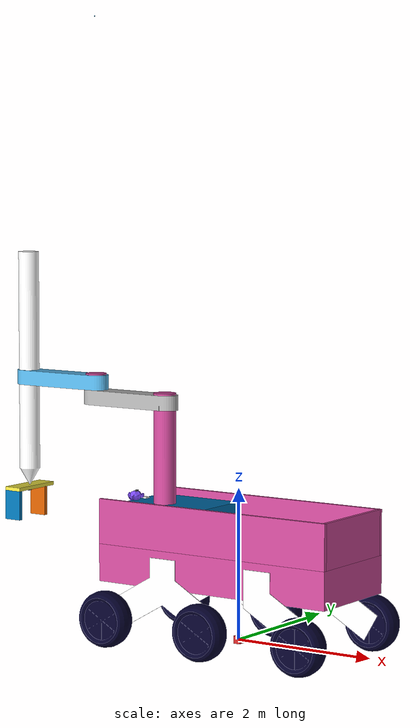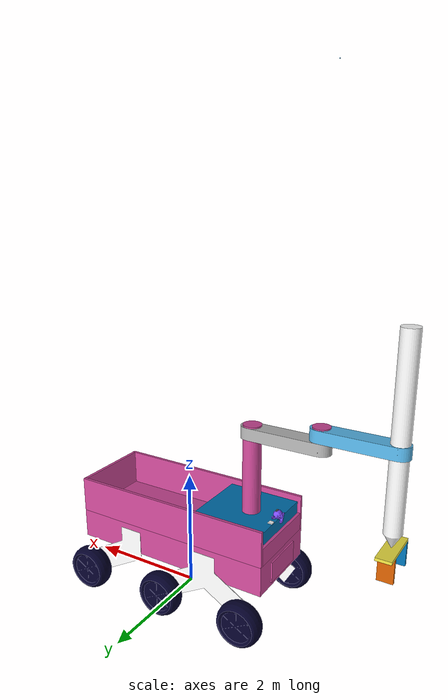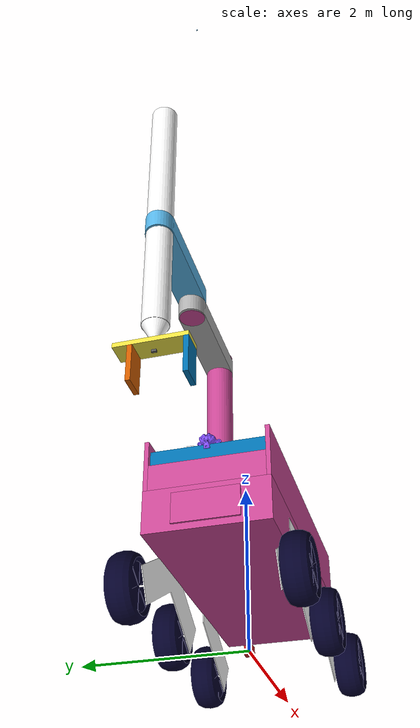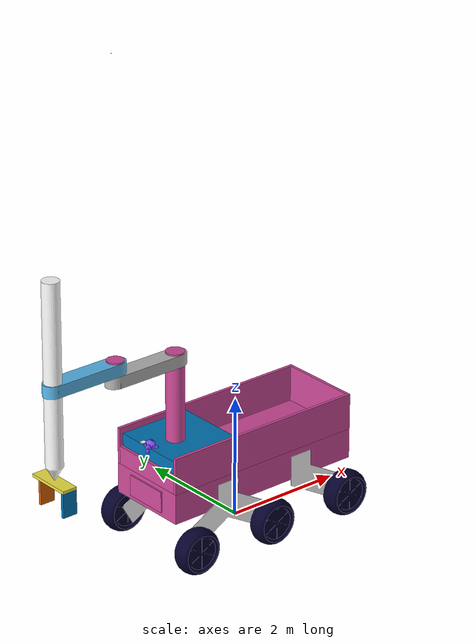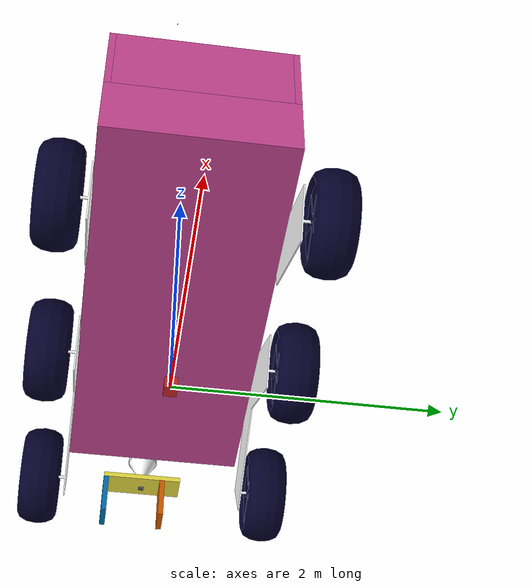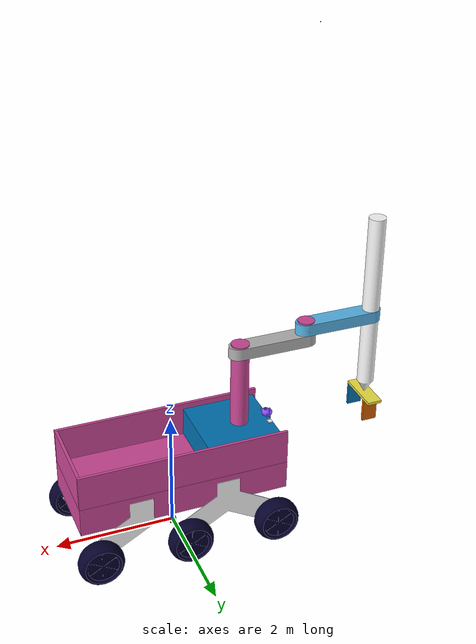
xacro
<?xml version="1.0"?>

<robot name="rover" xmlns:xacro="http://wiki.ros.org/xacro">

    <!-- includes -->
    <xacro:include filename="$(find rover_description)/urdf/base/robot_base.urdf.xacro"/>
    <xacro:include filename="$(find rover_description)/urdf/wheels/wheels.urdf.xacro"/>
    <xacro:include filename="$(find rover_description)/urdf/arm/scara.urdf.xacro"/>
    <xacro:include filename="$(find rover_description)/urdf/arm/gripper.urdf.xacro"/>
    <xacro:include filename="$(find rover_description)/urdf/ros2_control.urdf.xacro"/>
    <xacro:include filename="$(find rover_description)/urdf/utils/utils.urdf.xacro"/>
    <xacro:include filename="$(find rover_description)/urdf/sensors/camera.urdf.xacro"/>
    <xacro:include filename="$(find rover_description)/urdf/sensors/imu_sensor.urdf.xacro"/>
    <xacro:include filename="$(find rover_description)/urdf/sensors/gps.urdf.xacro"/>

    <!-- properties -->
    <xacro:property name="PI" value="3.1415926535897931"/>

    <!-- arguments -->
    <xacro:arg name="robot_ns" default=""/>
    <xacro:arg name="prefix" default=""/>

    <!-- robot parts -->
    <xacro:utils/>

    <!-- base -->
    <xacro:robot_base/>

    <!-- wheels -->
    <xacro:wheels parent="base_link"/>

    <!-- arm -->
    <xacro:scara parent="base_link"/>
    <xacro:gripper parent="prismatic_scara_link"/>

    <!-- sensors -->
    <xacro:camera node_name="front_camera" node_namespace="$(arg robot_ns)" frame_prefix="$(arg prefix)front_camera" parent="$(arg prefix)base_link" >
        <origin xyz="-1.65 0.0 0.82" rpy="0.0 0.0 ${PI}"/>
    </xacro:camera>

    <xacro:camera node_name="arm_camera" node_namespace="$(arg robot_ns)" frame_prefix="$(arg prefix)arm_camera" parent="$(arg prefix)base_gripper_link" >
        <origin xyz="0.0 0.0 -0.05" rpy="0.0 ${PI/2} ${PI}"/>
    </xacro:camera>

    <xacro:imu_sensor ns="$(arg robot_ns)" prefix="$(arg prefix)imu" parent="$(arg prefix)stand_scara2_link">
        <origin xyz="0.0 0.0 5.0" rpy="0 0 0"/>
    </xacro:imu_sensor>

    <xacro:gps node_namespace="$(arg robot_ns)" frame_prefix="$(arg prefix)gps" parent="$(arg prefix)base_link" simulation="true">
        <origin xyz="-1.65 0.2 0.70" rpy="0 0 0"/>
    </xacro:gps>

    <!-- gazebo ROS control plugins -->
    <xacro:include filename="$(find rover_description)/urdf/ros2_control.urdf.xacro"/>
    <xacro:arg name="config_controllers" default="$(find rover_description)/config/rover_controllers.yaml"/>
    <xacro:arg name="update_rate" default="30"/>
    <xacro:ros2_control/>

</robot>

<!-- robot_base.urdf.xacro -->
<robot name="rover" xmlns:xacro="http://wiki.ros.org/xacro">

    <xacro:macro name="robot_base">

        <joint name="base_link_joint" type="fixed">
            <origin rpy="0.00000 0.00000 0.00000" xyz="0.00000 0.00000 1.00000"/>
            <parent link="base_footprint"/>
            <child link="base_link"/>
        </joint>

        <link name="base_footprint">
        <collision name="base_footprint_collision">
            <origin rpy="0.00000 0.00000 0.00000" xyz="0.00000 0.00000 0.00000"/>
            <geometry>
            <box size="0.10000 0.10000 0.10000"/>
            </geometry>
        </collision>
        <visual name="base_footprint">
            <origin rpy="0.00000 0.00000 0.00000" xyz="0.00000 0.00000 0.00000"/>
            <material name="red.001"/>
            <geometry>
            <box size="0.10000 0.10000 0.10000"/>
            </geometry>
        </visual>
        </link>

        <link name="base_link">
            <collision name="base_rover.001_collision">
            <origin rpy="0.00000 0.00000 0.00000" xyz="0.00000 0.00000 0.00000"/>
            <geometry>
                <mesh filename="file://$(find rover_description)/meshes/dae/Cube.005.dae" scale="1.75000 0.70000 0.25000"/>
            </geometry>
            </collision>
            <collision name="base_rover.002_collision">
            <origin rpy="0.00000 0.00000 0.00000" xyz="0.00000 0.00000 0.00000"/>
            <geometry>
                <mesh filename="file://$(find rover_description)/meshes/dae/Cube.006.dae" scale="1.75000 0.70000 0.25000"/>
            </geometry>
            </collision>
            <collision name="base_rover.003_collision">
            <origin rpy="0.00000 0.00000 0.00000" xyz="0.00000 0.00000 0.00000"/>
            <geometry>
                <mesh filename="file://$(find rover_description)/meshes/dae/Cube.007.dae" scale="1.75000 0.70000 0.25000"/>
            </geometry>
            </collision>
            <collision name="base_rover.004_collision">
            <origin rpy="0.00000 0.00000 0.00000" xyz="0.00000 0.00000 0.00000"/>
            <geometry>
                <mesh filename="file://$(find rover_description)/meshes/dae/Cube.008.dae" scale="1.75000 0.70000 0.25000"/>
            </geometry>
            </collision>
            <collision name="base_rover.005_collision">
            <origin rpy="0.00000 0.00000 0.00000" xyz="0.00000 0.00000 0.00000"/>
            <geometry>
                <mesh filename="file://$(find rover_description)/meshes/dae/Cube.009.dae" scale="1.75000 0.70000 0.25000"/>
            </geometry>
            </collision>
            <collision name="base_rover_collision">
            <origin rpy="0.00000 0.00000 0.00000" xyz="0.00000 0.00000 0.00000"/>
            <geometry>
                <mesh filename="file://$(find rover_description)/meshes/dae/Cube.001.dae" scale="1.75000 0.70000 0.25000"/>
            </geometry>
            </collision>
            <collision name="base_rover_collision.000">
            <origin rpy="0.00000 0.00000 0.00000" xyz="-0.00391 -0.00000 0.01347"/>
            <geometry>
                <mesh filename="file://$(find rover_description)/meshes/dae/Cube.001.dae" scale="1.75000 0.70000 0.25000"/>
            </geometry>
            </collision>
            <inertial>
            <inertia ixx="75.00744" ixy="-0.00000" ixz="-7.63177" iyy="382.42206" iyz="-0.00000" izz="410.77399"/>
            <origin rpy="0.00000 0.00000 0.00000" xyz="-0.00000 0.00000 0.00000"/>
            <mass value="100.00000"/>
            </inertial>
            <visual name="base_rover">
            <material name="x"/>
            <origin rpy="0.00000 0.00000 0.00000" xyz="0.00000 0.00000 0.00000"/>
            <geometry>
                <mesh filename="file://$(find rover_description)/meshes/dae/Cube.001.dae" scale="1.75000 0.70000 0.25000"/>
            </geometry>
            </visual>
            <visual name="base_rover.001">
            <material name="x"/>
            <origin rpy="0.00000 0.00000 0.00000" xyz="0.00000 0.00000 0.00000"/>
            <geometry>
                <mesh filename="file://$(find rover_description)/meshes/dae/Cube.005.dae" scale="1.75000 0.70000 0.25000"/>
            </geometry>
            </visual>
            <visual name="base_rover.002">
            <material name="x"/>
            <origin rpy="0.00000 0.00000 0.00000" xyz="0.00000 0.00000 0.00000"/>
            <geometry>
                <mesh filename="file://$(find rover_description)/meshes/dae/Cube.006.dae" scale="1.75000 0.70000 0.25000"/>
            </geometry>
            </visual>
            <visual name="base_rover.003">
            <material name="x"/>
            <origin rpy="0.00000 0.00000 0.00000" xyz="0.00000 0.00000 0.00000"/>
            <geometry>
                <mesh filename="file://$(find rover_description)/meshes/dae/Cube.007.dae" scale="1.75000 0.70000 0.25000"/>
            </geometry>
            </visual>
            <visual name="base_rover.004">
            <material name="x"/>
            <origin rpy="0.00000 0.00000 0.00000" xyz="0.00000 0.00000 0.00000"/>
            <geometry>
                <mesh filename="file://$(find rover_description)/meshes/dae/Cube.008.dae" scale="1.75000 0.70000 0.25000"/>
            </geometry>
            </visual>
            <visual name="base_rover.005">
            <material name="x"/>
            <origin rpy="0.00000 0.00000 0.00000" xyz="0.00000 0.00000 0.00000"/>
            <geometry>
                <mesh filename="file://$(find rover_description)/meshes/dae/Cube.009.dae" scale="1.75000 0.70000 0.25000"/>
            </geometry>
            </visual>
        </link>

        <joint name="stand.0003_link_joint" type="fixed">
            <origin rpy="1.57080 0.00000 0.00000" xyz="-0.74391 0.70000 -0.05299"/>
            <parent link="base_link"/>
            <child link="stand.0003_link"/>
        </joint>

        <link name="stand.0003_link">
            <visual name="stand.0003">
            <material name="Material"/>
            <origin rpy="-1.57080 -0.00000 -1.04720" xyz="0.01707 -0.38694 -0.00017"/>
            <geometry>
                <mesh filename="file://$(find rover_description)/meshes/dae/Cube.011.dae" scale="0.20000 0.00500 0.55000"/>
            </geometry>
            </visual>
        </link>

        <joint name="stand.001_link_joint" type="fixed">
            <origin rpy="1.57080 0.00000 0.00000" xyz="0.73609 -0.70000 -0.05299"/>
            <parent link="base_link"/>
            <child link="stand.001_link"/>
        </joint>

        <link name="stand.001_link">
            <visual name="stand.001">
            <material name="Material"/>
            <origin rpy="-0.00000 0.00000 0.00000" xyz="0.26467 -0.34217 0.00015"/>
            <geometry>
                <mesh filename="file://$(find rover_description)/meshes/dae/Cylinder.002.dae" scale="0.01000 0.01000 0.03750"/>
            </geometry>
            </visual>
        </link>

        <joint name="stand.002_link_joint" type="fixed">
            <origin rpy="1.57080 0.00000 0.00000" xyz="0.73609 0.70000 -0.05299"/>
            <parent link="base_link"/>
            <child link="stand.002_link"/>
        </joint>

        <link name="stand.002_link">
            <visual name="stand.002">
            <material name="Material"/>
            <origin rpy="-0.00000 0.00000 0.00000" xyz="0.26467 -0.34217 -0.00015"/>
            <geometry>
                <mesh filename="file://$(find rover_description)/meshes/dae/Cylinder.006.dae" scale="0.01000 0.01000 0.03750"/>
            </geometry>
            </visual>
        </link>

        <joint name="stand.0045_link_joint" type="fixed">
            <origin rpy="1.57080 0.00000 0.00000" xyz="-0.73391 -0.70000 -0.05299"/>
            <parent link="base_link"/>
            <child link="stand.0045_link"/>
        </joint>

        <link name="stand.0045_link">
            <visual name="stand.0045">
            <material name="Material"/>
            <origin rpy="-1.57080 -0.00000 -1.04720" xyz="0.00707 -0.38694 0.00017"/>
            <geometry>
                <mesh filename="file://$(find rover_description)/meshes/dae/Cube.012.dae" scale="0.20000 0.00500 0.55000"/>
            </geometry>
            </visual>
        </link>

    </xacro:macro>
</robot>

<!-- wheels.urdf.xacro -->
<robot name="rover" xmlns:xacro="http://wiki.ros.org/xacro">

    <xacro:macro name="wheels"  params="parent">

        <joint name="wheel.003_link_joint" type="continuous">
            <limit effort="500.00000" velocity="200.00000"/>
            <origin rpy="-0.00000 0.00000 0.00000" xyz="-0.75703 -0.70000 -0.20000"/>
            <parent link="stand.0003_link"/>
            <child link="wheel.003_link"/>
            <axis xyz="0.00000 0.00000 1.00000"/>
        </joint>

        <link name="wheel.003_link">
            <collision name="wheel.003_collision">
            <origin rpy="0.00000 0.00000 0.00000" xyz="-0.00297 -0.00000 0.00000"/>
            <geometry>
                <mesh filename="file://$(find rover_description)/meshes/dae/Torus.003.dae" scale="0.30000 0.30000 0.60000"/>
            </geometry>
            </collision>
            <inertial>
            <inertia ixx="3.34375" ixy="0.00000" ixz="0.00000" iyy="5.73949" iyz="-0.00000" izz="3.34502"/>
            <origin rpy="0.00000 0.00000 0.00000" xyz="0.00000 0.00000 0.00000"/>
            <mass value="20.00000"/>
            </inertial>
            <visual name="wheel.003">
            <material name="Material.001"/>
            <origin rpy="-0.00000 0.00000 0.00000" xyz="0.00000 -0.00000 0.00000"/>
            <geometry>
                <mesh filename="file://$(find rover_description)/meshes/dae/Torus.003.dae" scale="0.30000 0.30000 0.60000"/>
            </geometry>
            </visual>
        </link>

        <joint name="wheel_link_joint" type="continuous">
            <limit effort="500.00000" velocity="200.00000"/>
            <origin rpy="-0.00000 0.00000 0.00000" xyz="0.74297 -0.70000 -0.20000"/>
            <parent link="stand.0003_link"/>
            <child link="wheel_link"/>
            <axis xyz="0.00000 0.00000 1.00000"/>
        </joint>

        <link name="wheel_link">
            <collision name="wheel_collision">
            <origin rpy="0.00000 0.00000 0.00000" xyz="-0.00297 -0.00000 0.00000"/>
            <geometry>
                <mesh filename="file://$(find rover_description)/meshes/dae/Torus.dae" scale="0.30000 0.30000 0.60000"/>
            </geometry>
            </collision>
            <inertial>
            <inertia ixx="3.34375" ixy="0.00000" ixz="0.00000" iyy="5.73949" iyz="-0.00000" izz="3.34502"/>
            <origin rpy="0.00000 0.00000 0.00000" xyz="-0.00000 0.00000 0.00000"/>
            <mass value="20.00000"/>
            </inertial>
            <visual name="wheel">
            <material name="Material.001"/>
            <origin rpy="-0.00000 0.00000 0.00000" xyz="0.00000 -0.00000 0.00000"/>
            <geometry>
                <mesh filename="file://$(find rover_description)/meshes/dae/Torus.dae" scale="0.30000 0.30000 0.60000"/>
            </geometry>
            </visual>
        </link>

        <joint name="wheel.001_link_joint" type="continuous">
            <limit effort="500.00000" velocity="200.00000"/>
            <origin rpy="-0.00000 0.00000 0.00000" xyz="0.76297 -0.70000 0.20000"/>
            <parent link="stand.001_link"/>
            <child link="wheel.001_link"/>
            <axis xyz="0.00000 0.00000 1.00000"/>
        </joint>

        <link name="wheel.001_link">
            <collision name="wheel.001_collision">
            <origin rpy="0.00000 0.00000 0.00000" xyz="-0.00297 0.00000 0.00000"/>
            <geometry>
                <mesh filename="file://$(find rover_description)/meshes/dae/Torus.001.dae" scale="0.30000 0.30000 0.60000"/>
            </geometry>
            </collision>
            <inertial>
            <inertia ixx="3.34375" ixy="0.00000" ixz="0.00000" iyy="5.73949" iyz="-0.00000" izz="3.34502"/>
            <origin rpy="0.00000 0.00000 0.00000" xyz="0.00000 0.00000 0.00000"/>
            <mass value="20.00000"/>
            </inertial>
            <visual name="wheel.001">
            <material name="Material.001"/>
            <origin rpy="-0.00000 0.00000 0.00000" xyz="0.00000 0.00000 0.00000"/>
            <geometry>
                <mesh filename="file://$(find rover_description)/meshes/dae/Torus.001.dae" scale="0.30000 0.30000 0.60000"/>
            </geometry>
            </visual>
        </link>

        <joint name="wheel.002_link_joint" type="continuous">
            <limit effort="500.00000" velocity="200.00000"/>
            <origin rpy="-0.00000 0.00000 0.00000" xyz="0.76297 -0.70000 -0.20000"/>
            <parent link="stand.002_link"/>
            <child link="wheel.002_link"/>
            <axis xyz="0.00000 0.00000 1.00000"/>
        </joint>

        <link name="wheel.002_link">
            <collision name="wheel.002_collision">
            <origin rpy="0.00000 0.00000 0.00000" xyz="-0.00297 0.00000 0.00000"/>
            <geometry>
                <mesh filename="file://$(find rover_description)/meshes/dae/Torus.002.dae" scale="0.30000 0.30000 0.60000"/>
            </geometry>
            </collision>
            <inertial>
            <inertia ixx="3.34375" ixy="0.00000" ixz="0.00000" iyy="5.73949" iyz="-0.00000" izz="3.34502"/>
            <origin rpy="0.00000 0.00000 0.00000" xyz="0.00000 0.00000 0.00000"/>
            <mass value="20.00000"/>
            </inertial>
            <visual name="wheel.002">
            <material name="Material.001"/>
            <origin rpy="-0.00000 0.00000 0.00000" xyz="0.00000 -0.00000 0.00000"/>
            <geometry>
                <mesh filename="file://$(find rover_description)/meshes/dae/Torus.002.dae" scale="0.30000 0.30000 0.60000"/>
            </geometry>
            </visual>
        </link>

        <joint name="wheel.004_link_joint" type="continuous">
            <limit effort="500.00000" velocity="200.00000"/>
            <origin rpy="-0.00000 0.00000 0.00000" xyz="0.73297 -0.70000 0.20000"/>
            <parent link="stand.0045_link"/>
            <child link="wheel.004_link"/>
            <axis xyz="0.00000 0.00000 1.00000"/>
        </joint>

        <link name="wheel.004_link">
            <collision name="wheel.004_collision">
            <origin rpy="0.00000 0.00000 0.00000" xyz="-0.00297 0.00000 0.00000"/>
            <geometry>
                <mesh filename="file://$(find rover_description)/meshes/dae/Torus.004.dae" scale="0.30000 0.30000 0.60000"/>
            </geometry>
            </collision>
            <inertial>
            <inertia ixx="3.34375" ixy="0.00000" ixz="0.00000" iyy="5.73949" iyz="-0.00000" izz="3.34502"/>
            <origin rpy="0.00000 0.00000 0.00000" xyz="-0.00000 0.00000 0.00000"/>
            <mass value="20.00000"/>
            </inertial>
            <visual name="wheel.004">
            <material name="Material.001"/>
            <origin rpy="-0.00000 0.00000 0.00000" xyz="0.00000 0.00000 0.00000"/>
            <geometry>
                <mesh filename="file://$(find rover_description)/meshes/dae/Torus.004.dae" scale="0.30000 0.30000 0.60000"/>
            </geometry>
            </visual>
        </link>

        <joint name="wheel.005_link_joint" type="continuous">
            <limit effort="500.00000" velocity="200.00000"/>
            <origin rpy="-0.00000 0.00000 0.00000" xyz="-0.76703 -0.70000 0.20000"/>
            <parent link="stand.0045_link"/>
            <child link="wheel.005_link"/>
            <axis xyz="0.00000 0.00000 1.00000"/>
        </joint>

        <link name="wheel.005_link">
            <collision name="wheel.005_collision">
            <origin rpy="0.00000 0.00000 0.00000" xyz="-0.00297 0.00000 0.00000"/>
            <geometry>
                <mesh filename="file://$(find rover_description)/meshes/dae/Torus.005.dae" scale="0.30000 0.30000 0.60000"/>
            </geometry>
            </collision>
            <inertial>
            <inertia ixx="3.34375" ixy="0.00000" ixz="0.00000" iyy="5.73949" iyz="-0.00000" izz="3.34502"/>
            <origin rpy="0.00000 0.00000 0.00000" xyz="0.00000 0.00000 0.00000"/>
            <mass value="20.00000"/>
            </inertial>
            <visual name="wheel.005">
            <material name="Material.001"/>
            <origin rpy="-0.00000 0.00000 0.00000" xyz="0.00000 0.00000 0.00000"/>
            <geometry>
                <mesh filename="file://$(find rover_description)/meshes/dae/Torus.005.dae" scale="0.30000 0.30000 0.60000"/>
            </geometry>
            </visual>
        </link>
    </xacro:macro>
</robot>

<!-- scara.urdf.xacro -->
<robot name="rover" xmlns:xacro="http://wiki.ros.org/xacro">

    <xacro:macro name="scara"  params="parent">

        <joint name="base_scara_link_joint" type="fixed">
            <origin rpy="0.00000 0.00000 0.00000" xyz="-1.06878 -0.00000 0.44513"/>
            <parent link="base_link"/>
            <child link="base_scara_link"/>
        </joint>

        <link name="base_scara_link">
            <collision name="base_scara_collision">
            <origin rpy="0.00000 0.00000 0.00000" xyz="0.00000 0.00000 0.00000"/>
            <geometry>
                <mesh filename="file://$(find rover_description)/meshes/dae/Cube.048.dae" scale="0.62500 0.67500 0.25000"/>
            </geometry>
            </collision>
            <inertial>
            <inertia ixx="5.18125" ixy="0.00000" ixz="0.00000" iyy="4.53125" iyz="0.00000" izz="8.46250"/>
            <origin rpy="0.00000 0.00000 0.00000" xyz="0.00000 0.00000 0.00000"/>
            <mass value="20.00000"/>
            </inertial>
            <visual name="base_scara">
            <material name="None"/>
            <origin rpy="0.00000 0.00000 0.00000" xyz="0.00000 0.00000 0.00000"/>
            <geometry>
                <mesh filename="file://$(find rover_description)/meshes/dae/Cube.048.dae" scale="0.62500 0.67500 0.25000"/>
            </geometry>
            </visual>
        </link>

        <joint name="Suzanne_link_joint" type="fixed">
            <origin rpy="0.00000 0.00000 -1.57080" xyz="-0.60834 0.00000 0.27772"/>
            <parent link="base_scara_link"/>
            <child link="Suzanne_link"/>
        </joint>

        <link name="Suzanne_link">
            <collision name="Suzanne_collision">
            <origin rpy="0.00000 0.00000 -0.00000" xyz="-0.00000 0.00000 0.00000"/>
            <geometry>
                <mesh filename="file://$(find rover_description)/meshes/dae/Suzanne.dae" scale="0.10000 0.10000 0.10000"/>
            </geometry>
            </collision>
            <visual name="Suzanne">
            <material name="Material.003"/>
            <origin rpy="0.00000 0.00000 0.00000" xyz="-0.00000 0.00000 0.00000"/>
            <geometry>
                <mesh filename="file://$(find rover_description)/meshes/dae/Suzanne.dae" scale="0.10000 0.10000 0.10000"/>
            </geometry>
            </visual>
        </link>

        <joint name="stand_scara1_link_joint" type="fixed">
            <origin rpy="0.00000 0.00000 0.00000" xyz="-0.11919 0.00000 0.97731"/>
            <parent link="base_scara_link"/>
            <child link="stand_scara1_link"/>
        </joint>

        <link name="stand_scara1_link">
            <collision name="stand_scara1_collision">
            <origin rpy="0.00000 0.00000 0.00000" xyz="0.00000 0.00000 0.00000"/>
            <geometry>
                <mesh filename="file://$(find rover_description)/meshes/dae/Cylinder.dae" scale="0.15000 0.15000 0.75000"/>
            </geometry>
            </collision>
            <inertial>
            <inertia ixx="4.82722" ixy="0.00000" ixz="0.00000" iyy="4.82722" iyz="0.00000" izz="0.27945"/>
            <origin rpy="0.00000 0.00000 0.00000" xyz="0.00000 -0.00000 0.00000"/>
            <mass value="10.00000"/>
            </inertial>
            <visual name="stand_scara1">
            <material name="x"/>
            <origin rpy="0.00000 0.00000 0.00000" xyz="0.00000 0.00000 0.00000"/>
            <geometry>
                <mesh filename="file://$(find rover_description)/meshes/dae/Cylinder.dae" scale="0.15000 0.15000 0.75000"/>
            </geometry>
            </visual>
        </link>

        <joint name="revolute1_link_joint" type="revolute">
            <limit lower="-3.14000" upper="3.14000" effort="500.00000" velocity="100.00000"/>
            <origin rpy="0.00000 0.00000 0.00000" xyz="0.01634 0.00000 0.62508"/>
            <parent link="stand_scara1_link"/>
            <child link="revolute1_link"/>
            <axis xyz="0.00000 0.00000 1.00000"/>
        </joint>

        <link name="revolute1_link">
            <collision name="revolute1_collision">
            <origin rpy="0.00000 0.00000 0.00000" xyz="0.00000 0.00000 0.00000"/>
            <geometry>
                <mesh filename="file://$(find rover_description)/meshes/dae/Cylinder.001.dae" scale="0.17485 0.15000 0.10000"/>
            </geometry>
            </collision>
            <inertial>
            <inertia ixx="0.13833" ixy="-0.00000" ixz="0.00000" iyy="2.59229" iyz="0.00000" izz="2.63871"/>
            <origin rpy="0.00000 0.00000 0.00000" xyz="-0.58268 -0.00000 0.00000"/>
            <mass value="5.00000"/>
            </inertial>
            <visual name="revolute1">
            <material name="None"/>
            <origin rpy="0.00000 0.00000 0.00000" xyz="0.00000 0.00000 0.00000"/>
            <geometry>
                <mesh filename="file://$(find rover_description)/meshes/dae/Cylinder.001.dae" scale="0.17485 0.15000 0.10000"/>
            </geometry>
            </visual>
        </link>

        <joint name="stand_scara2_link_joint" type="fixed">
            <origin rpy="0.00000 0.00000 0.00000" xyz="-1.15307 -0.00078 0.10892"/>
            <parent link="revolute1_link"/>
            <child link="stand_scara2_link"/>
        </joint>

        <link name="stand_scara2_link">
            <collision name="stand_scara2_collision">
            <origin rpy="0.00000 0.00000 0.00000" xyz="0.00000 0.00000 0.00000"/>
            <geometry>
                <mesh filename="file://$(find rover_description)/meshes/dae/Cylinder.003.dae" scale="0.14000 0.14000 0.21000"/>
            </geometry>
            </collision>
            <inertial>
            <inertia ixx="0.09784" ixy="-0.00000" ixz="-0.00000" iyy="0.09784" iyz="0.00000" izz="0.04869"/>
            <origin rpy="0.00000 0.00000 0.00000" xyz="0.00000 0.00000 0.00000"/>
            <mass value="1.00000"/>
            </inertial>
            <visual name="stand_scara2">
            <material name="x"/>
            <origin rpy="0.00000 0.00000 0.00000" xyz="0.00000 0.00000 0.00000"/>
            <geometry>
                <mesh filename="file://$(find rover_description)/meshes/dae/Cylinder.003.dae" scale="0.14000 0.14000 0.21000"/>
            </geometry>
            </visual>
        </link>

        <joint name="revolute2_link_joint" type="revolute">
            <limit lower="-3.14000" upper="3.14000" effort="500.00000" velocity="100.00000"/>
            <origin rpy="0.00000 0.00000 0.00000" xyz="0.00187 0.00078 0.09057"/>
            <parent link="stand_scara2_link"/>
            <child link="revolute2_link"/>
            <axis xyz="0.00000 0.00000 1.00000"/>
        </joint>

        <link name="revolute2_link">
            <collision name="revolute2_collision">
            <origin rpy="0.00000 0.00000 0.00000" xyz="0.00000 0.00000 0.00000"/>
            <geometry>
                <mesh filename="file://$(find rover_description)/meshes/dae/Cylinder.004.dae" scale="0.17485 0.15000 0.10000"/>
            </geometry>
            </collision>
            <inertial>
            <inertia ixx="0.13833" ixy="-0.00000" ixz="0.00000" iyy="2.59229" iyz="0.00000" izz="2.63871"/>
            <origin rpy="0.00000 0.00000 0.00000" xyz="-0.58268 -0.00000 0.00000"/>
            <mass value="5.00000"/>
            </inertial>
            <visual name="revolute2">
            <material name="None"/>
            <origin rpy="0.00000 0.00000 0.00000" xyz="0.00000 0.00000 0.00000"/>
            <geometry>
                <mesh filename="file://$(find rover_description)/meshes/dae/Cylinder.004.dae" scale="0.17485 0.15000 0.10000"/>
            </geometry>
            </visual>
        </link>

        <joint name="prismatic_scara_link_joint" type="prismatic">
            <limit lower="-5.00000" upper="5.00000" effort="500.00000" velocity="100.00000"/>
            <origin rpy="-3.14159 0.00000 0.00000" xyz="-1.16031 0.00000 -1.38672"/>
            <parent link="revolute2_link"/>
            <child link="prismatic_scara_link"/>
            <axis xyz="0.00000 0.00000 1.00000"/>
        </joint>

        <link name="prismatic_scara_link">
            <collision name="prismatic_scara_collision">
            <origin rpy="-0.00000 0.00000 0.00000" xyz="0.00000 -0.00000 -0.00000"/>
            <geometry>
                <mesh filename="file://$(find rover_description)/meshes/dae/Cone.dae" scale="0.14000 0.14000 0.12500"/>
            </geometry>
            </collision>
            <inertial>
            <inertia ixx="18.80756" ixy="0.00000" ixz="-0.00315" iyy="18.80756" iyz="0.00000" izz="0.17938"/>
            <origin rpy="0.00000 0.00000 0.00000" xyz="0.00069 -0.00000 -1.57356"/>
            <mass value="3.00000"/>
            </inertial>
            <visual name="prismatic_scara">
            <material name="Material"/>
            <origin rpy="-0.00000 0.00000 0.00000" xyz="0.00000 -0.00000 0.00000"/>
            <geometry>
                <mesh filename="file://$(find rover_description)/meshes/dae/Cone.dae" scale="0.14000 0.14000 0.12500"/>
            </geometry>
            </visual>
        </link>
    </xacro:macro>
</robot>

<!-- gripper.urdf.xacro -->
<robot name="gripper" xmlns:xacro="http://wiki.ros.org/xacro">

    <xacro:macro name="gripper"  params="parent">
        <joint name="base_gripper_link_joint" type="continuous">
            <limit effort="500.00000" velocity="10.00000"/>
            <origin rpy="3.14159 0.00000 0.00000" xyz="-0.00641 0.00000 0.13457"/>
            <parent link="prismatic_scara_link"/>
            <child link="base_gripper_link"/>
            <axis xyz="0.00000 0.00000 1.00000"/>
        </joint>

        <link name="base_gripper_link">
            <collision name="base_gripper_collision">
            <origin rpy="0.00000 0.00000 0.00000" xyz="-0.00000 -0.00000 0.00000"/>
            <geometry>
                <mesh filename="file://$(find rover_description)/meshes/dae/Cube.002.dae" scale="0.12500 0.37500 0.02500"/>
            </geometry>
            </collision>
            <inertial>
            <inertia ixx="0.14125" ixy="0.00000" ixz="0.00000" iyy="0.01625" iyz="0.00000" izz="0.15625"/>
            <origin rpy="0.00000 0.00000 0.00000" xyz="-0.00000 -0.00000 0.00000"/>
            <mass value="2.00000"/>
            </inertial>
            <visual name="base_gripper">
            <material name="None"/>
            <origin rpy="0.00000 0.00000 0.00000" xyz="-0.00000 -0.00000 0.00000"/>
            <geometry>
                <mesh filename="file://$(find rover_description)/meshes/dae/Cube.002.dae" scale="0.12500 0.37500 0.02500"/>
            </geometry>
            </visual>
        </link>

        <joint name="left_gripper_link_joint" type="prismatic">
            <limit lower="-0.00001" upper="0.30000" effort="500.00000" velocity="10.00000"/>
            <origin rpy="1.57080 0.00000 0.00000" xyz="-0.00019 -0.35000 -0.22297"/>
            <parent link="base_gripper_link"/>
            <child link="left_gripper_link"/>
            <axis xyz="0.00000 0.00000 -1.00000"/>
        </joint>

        <link name="left_gripper_link">
            <collision name="left_gripper_collision">
            <origin rpy="-1.57080 0.00000 0.00000" xyz="-0.00000 0.00000 -0.00000"/>
            <geometry>
                <mesh filename="file://$(find rover_description)/meshes/dae/Cube.004.dae" scale="0.12500 0.02500 0.20000"/>
            </geometry>
            </collision>
            <inertial>
            <inertia ixx="0.02708" ixy="0.00000" ixz="0.00000" iyy="0.03708" iyz="0.00000" izz="0.01083"/>
            <origin rpy="0.00000 0.00000 0.00000" xyz="-0.00000 0.00000 0.00000"/>
            <mass value="1.00000"/>
            </inertial>
            <visual name="left_gripper">
            <material name="None"/>
            <origin rpy="-1.57080 0.00000 0.00000" xyz="-0.00000 0.00000 -0.00000"/>
            <geometry>
                <mesh filename="file://$(find rover_description)/meshes/dae/Cube.004.dae" scale="0.12500 0.02500 0.20000"/>
            </geometry>
            </visual>
        </link>

        <joint name="right_gripper_link_joint" type="prismatic">
            <limit lower="-0.30000" upper="-0.00001" effort="500.00000" velocity="10.00000"/>
            <origin rpy="1.57080 0.00000 0.00000" xyz="0.00087 0.35000 -0.22297"/>
            <parent link="base_gripper_link"/>
            <child link="right_gripper_link"/>
            <axis xyz="0.00000 0.00000 -1.00000"/>
        </joint>

        <link name="right_gripper_link">
            <collision name="right_gripper_collision">
            <origin rpy="-1.57080 0.00000 0.00000" xyz="-0.00000 0.00000 -0.00000"/>
            <geometry>
                <mesh filename="file://$(find rover_description)/meshes/dae/Cube.003.dae" scale="0.12500 0.02500 0.20000"/>
            </geometry>
            </collision>
            <inertial>
            <inertia ixx="0.02708" ixy="0.00000" ixz="0.00000" iyy="0.03708" iyz="0.00000" izz="0.01083"/>
            <origin rpy="0.00000 0.00000 0.00000" xyz="-0.00000 0.00000 0.00000"/>
            <mass value="1.00000"/>
            </inertial>
            <visual name="right_gripper">
            <material name="None"/>
            <origin rpy="-1.57080 0.00000 0.00000" xyz="-0.00000 0.00000 -0.00000"/>
            <geometry>
                <mesh filename="file://$(find rover_description)/meshes/dae/Cube.003.dae" scale="0.12500 0.02500 0.20000"/>
            </geometry>
            </visual>
        </link>
    </xacro:macro>
</robot>

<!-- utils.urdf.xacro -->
<robot name="utils" xmlns:xacro="http://wiki.ros.org/xacro">

    <xacro:macro name="utils" >

        <material name="Material">
            <color rgba="1.00000 1.00000 1.00000 1.00000"/>
        </material>
        <material name="Material.001">
            <color rgba="0.01569 0.00392 0.16471 1.00000"/>
        </material>
        <material name="Material.003">
            <color rgba="0.50196 0.30196 1.00000 1.00000"/>
        </material>
        <material name="x">
            <color rgba="0.80000 0.28235 0.59216 1.00000"/>
        </material>

    </xacro:macro>

    <xacro:macro name="solid_cuboid_inertia" params="m w h d">
    <inertia  ixx="${(m*(h*h+d*d))/12}" ixy = "0" ixz = "0"
                iyy="${(m*(w*w+d*d))/12}" iyz = "0"
                izz="${(m*(w*w+h*h))/12}"/>
    </xacro:macro>

    <!-- Solid cylinder of radius r, height h and mass m -->
    <xacro:macro name="solid_cylinder_inertia" params="m r h">
    <inertia  ixx="${m*(3*r*r+h*h)/12}" ixy = "0" ixz = "0"
                iyy="${m*(3*r*r+h*h)/12}" iyz = "0"
                izz="${m*r*r/2}"/>
    </xacro:macro>
</robot>

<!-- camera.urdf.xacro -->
<robot name="camera" xmlns:xacro="http://wiki.ros.org/xacro">
    <xacro:include filename="$(find rover_description)/urdf/utils/utils.urdf.xacro"/>
    <!-- ####### CAMERA ####### -->
    <xacro:macro name="camera"
                params="frame_prefix
                       parent
                       *origin
                       node_name:=camera
                       node_namespace:=${None}
                       topic_prefix:=~/
                       horizontal_fov:=80
                       vertical_fov:=60
                       video_width:=1280
                       video_height:=720
                       video_fps:=30">
        <!-- node_namespace is used from node_name if not set -->
        <xacro:if value="${node_namespace == None}">
        <xacro:property name="node_namespace" value="${node_name}"/>
        </xacro:if>

        <joint name="${frame_prefix}_camera_base_joint" type="fixed">
            <xacro:insert_block name="origin" />
            <parent link="${parent}"/>
            <child link="${frame_prefix}_camera_base_link" />
        </joint>
        <link name="${frame_prefix}_camera_base_link">
            <visual>
                <origin xyz="0 0 0" rpy="0 0 0"/>
                <geometry>
                    <box size="0.025 0.05 0.025"/>
                </geometry>
                <material name="light_grey">
                    <color rgba="0.35 0.35 0.35 1"/>
                </material>
            </visual>
            <collision>
                <origin xyz="0.0 0.0 0.0" rpy="0 0 0" />
                <geometry>
                    <box size="0.025 0.05 0.025"/>
                </geometry>
            </collision>
            <inertial>
                <mass value="0.135" />
                <origin xyz="0 0 0" />
                <xacro:solid_cuboid_inertia m="0.135" w="0.033" h="0.175" d="0.03" />
            </inertial>
        </link>

        <!-- Camera-->
        <joint name="${frame_prefix}_camera_joint" type="fixed">
            <origin xyz="0.0 -0.06 0.0" rpy="0.0 0.0 0.0" />
            <parent link="${frame_prefix}_camera_base_link" />
            <child link="${frame_prefix}_camera_frame" />
        </joint>
        <link name="${frame_prefix}_camera_frame"/>
        <joint name="${frame_prefix}color_optical_joint" type="fixed">
            <origin xyz="0.0 0 0.0" rpy="0.0 ${pi/2} 0.0" />
            <parent link="${frame_prefix}_camera_frame" />
            <child link="${frame_prefix}_camera_optical_frame" />
        </joint>
        <link name="${frame_prefix}_camera_optical_frame"/>
        <gazebo reference="${frame_prefix}_camera_frame">
            <sensor name="${frame_prefix}_sensor" type="camera">
                <visualize>true</visualize>
                <update_rate>10</update_rate>
                <topic>/${frame_prefix}/image</topic>
                <camera>
                    <horizontal_fov>${radians(float(horizontal_fov))}</horizontal_fov>
                    <image>
                        <width>${video_width}</width>
                        <height>${video_height}</height>
                        <format>R8G8B8</format>
                    </image>
                    <clip>
                        <near>0.02</near>
                        <far>100.0</far>
                    </clip>
                    <noise>
                        <type>gaussian</type>
                        <mean>0.0</mean>
                        <stddev>0.007</stddev>
                    </noise>
                    <optical_frame_id>${frame_prefix}_camera_frame</optical_frame_id>
                </camera>
            </sensor>
        </gazebo>
    </xacro:macro>
    <xacro:macro name="sensor_camera"
            params="frame_prefix
                       parent
                       *origin
                       node_namespace:=cameras
                       node_name
                       topic_prefix:=~/">

        <xacro:camera frame_prefix="${frame_prefix}"
                                     parent="${parent}"
                                     node_namespace="${node_namespace}"
                                     node_name="${node_name}"
                                     topic_prefix="${topic_prefix}"
                                     horizontal_fov="110"
                                     vertical_fov="70"
                                     video_width="1920"
                                     video_height="1080"
                                     video_fps="30">
            <xacro:insert_block name="origin" />
        </xacro:camera>
    </xacro:macro>
</robot>

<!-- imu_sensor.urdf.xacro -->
<robot name="imu_sensor" xmlns:xacro="http://wiki.ros.org/xacro">
    <!-- ######### IMU ######### -->
    <xacro:macro name="imu_sensor" params="prefix ns:='' topic:='imu/data' parent *origin">
        <joint name="${prefix}_joint" type="fixed">
            <axis xyz="1 0 0"/>
            <!--origin xyz="0 0 0.2825"/-->
            <xacro:insert_block name="origin"/>
            <parent link="${parent}"/>
            <child link="${prefix}_link"/>
        </joint>

        <link name="${prefix}_link">
            <inertial>
                <origin xyz="0.0 0 0.01" rpy="0 0 0" />
                <mass value="0.005" />
                <xacro:solid_cuboid_inertia m="0.005" w="0.001" h="0.001" d="0.001" />
            </inertial>
            <visual>
                <origin rpy="0 0 0" xyz="0 0 0"/>
                <geometry>
                    <box size="0.01 0.01 0.01"/>
                </geometry>
            </visual>
            <collision>
                <origin rpy="0 0 0" xyz="0 0 0"/>
                <geometry>
                    <box size="0.001 0.001 0.001"/>
                </geometry>
            </collision>
        </link>

        <gazebo reference="${prefix}_link">
            <sensor name="${prefix}_sensor" type="imu">
                <always_on>1</always_on>
                <update_rate>30</update_rate>
                <topic>${topic}</topic>
            </sensor>
        </gazebo>

    </xacro:macro>
</robot>

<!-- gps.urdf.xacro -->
<robot name="gps" xmlns:xacro="http://wiki.ros.org/xacro">
	<xacro:macro name="gps"
               params="frame_prefix
                       parent
                       *origin
                       simulation:=false
                       node_name:=gps
                       node_namespace:=${None}
                       topic_prefix:=~/
                       update_rate:=5.0">

	  <joint name="${frame_prefix}_joint" type="fixed">
	    <xacro:insert_block name="origin"/>
	    <parent link="${parent}"/>
	    <child link="${frame_prefix}_base_link"/>
	  </joint>
	  <link name="${frame_prefix}_base_link">
      <inertial>
        <origin xyz="0.0 0 0.015" rpy="0 0 0" />
        <mass value="0.2" />
        <xacro:solid_cuboid_inertia m="0.2" w="0.081" h="0.081" d="0.03" />
      </inertial>
		<visual>
			<origin rpy="0 0 0" xyz="0 0 0"/>
			<material name="gps_color">
				<color rgba="1 1 1 1"/>
			</material>
			<geometry>
			<box size="0.075 0.075 0.025"/>
			</geometry>
		</visual>
	    <collision>
	      <origin rpy="0 0 0" xyz="0 0 0"/>
	      <geometry>
	        <box size="0.075 0.075 0.025"/>
	      </geometry>
	    </collision>
	  </link>

    <gazebo reference="${frame_prefix}_base_link">
      <sensor name="${frame_prefix}_sensor" type="navsat">
        <always_on>1</always_on>
        <update_rate>${update_rate}</update_rate>
        <topic>/robot/gps/fix</topic>
        <gz_frame_id>${frame_prefix}_base_link</gz_frame_id>
      </sensor>
    </gazebo>

  </xacro:macro>
</robot>
